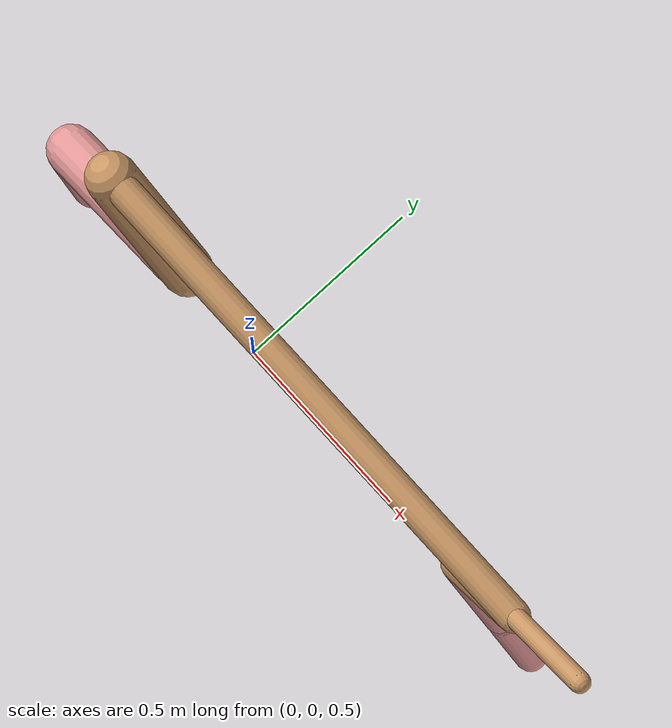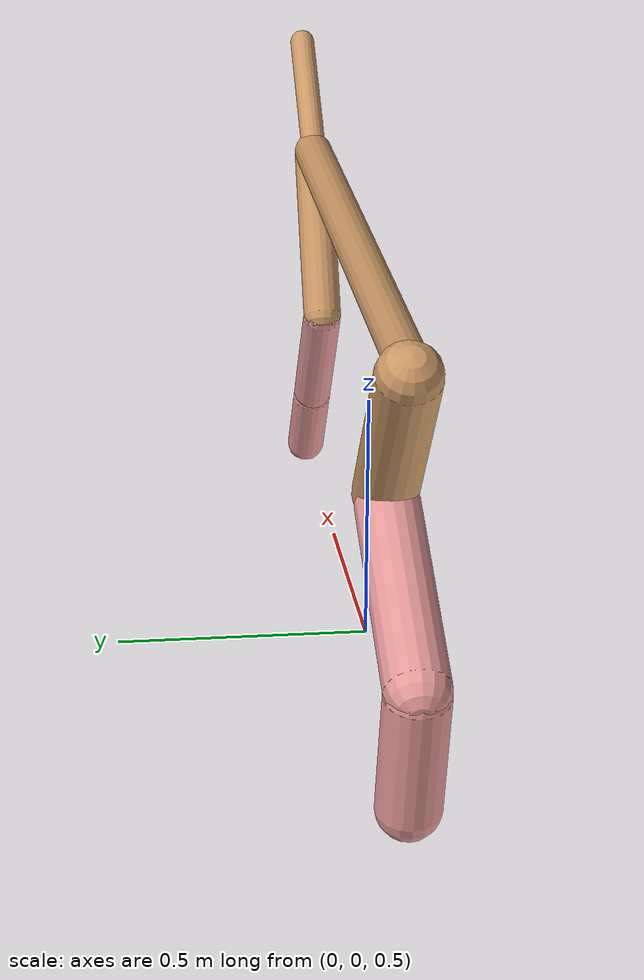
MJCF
<mujoco model="cheetah">
  <compiler angle="radian" coordinate="local" inertiafromgeom="true" settotalmass="14" />
  <default>
    <joint armature=".1" damping=".01" limited="true" solimplimit="0 .8 .03" solreflimit=".02 1" stiffness="8" />
    <geom conaffinity="0" condim="3" contype="1" friction="0.8 .1 .1" rgba="0.8 0.6 .4 1" solimp="0.0 0.8 0.01" solref="0.02 1" />
    <motor ctrllimited="true" ctrlrange="-1 1" />
  </default>
  <size nstack="300000" nuser_geom="1" />
  <option gravity="0 0 -9.81" timestep="0.01" />
  <worldbody>
    <body name="torso" pos="0.0 0.0 1.2472904042893758">
      <joint armature="0" axis="1 0 0" damping="0" limited="false" name="ignorex" pos="0 0 0" stiffness="0" type="slide" />
      <joint armature="0" axis="0 0 1" damping="0" limited="false" name="ignorez" pos="0 0 0" stiffness="0" type="slide" />
      <joint armature="0" axis="0 1 0" damping="0" limited="false" name="ignorey" pos="0 0 0" stiffness="0" type="hinge" />
      <geom fromto="-0.5 0.0 0.0 0.915070267305872 0.0 0.0" name="torso" size="0.040938061675284645" type="capsule" />
      <geom axisangle="0 1 0 .87" name="head" pos="1.0150702673058722 0.0 0.1" size="0.026802995905772772 0.15" type="capsule" />

      <body name="bthigh" pos="-.5 0 0">
        <joint axis="0 1 0" damping="6" name="bthigh" pos="0 0 0" range="-.52 1.05" stiffness="240" type="hinge" />
        <geom axisangle="0 1 0 -3.8" name="bthigh" pos="0.14100413820061578 0.0 -0.1833053796608005" size="0.06424102520444148 0.21225178696776228" type="capsule" />
        <body name="bshin" pos="0.24200827640123151 0.0 -0.35661075932160097">
          <joint axis="0 1 0" damping="4.5" name="bshin" pos="0 0 0" range="-.785 .785" stiffness="180" type="hinge" />
          <geom axisangle="0 1 0 -2.03" name="bshin" pos="-0.20222602783513832 0.0 -0.10111301391756916" rgba="0.9 0.6 0.6 1" size="0.06424102520444148 0.21957081410458168" type="capsule" />
          <body name="bfoot" pos="-0.40445205567027664 0.0 -0.20222602783513832">
            <joint axis="0 1 0" damping="3" name="bfoot" pos="0 0 0" range="-.4 .785" stiffness="120" type="hinge" />
            <geom axisangle="0 1 0 -.27" name="bfoot" pos="0.04288180334461787 0.0 -0.13865116414759782" rgba="0.9 0.6 0.6 1" size="0.06424102520444148 0.1375977101722045" type="capsule" />
            <inertial mass="10" />
          </body>
        </body>
      </body>
      <body name="fthigh" pos="0.9150702673058722 0.0 0.0">
        <joint axis="0 1 0" damping="4.5" name="fthigh" pos="0 0 0" range="-1.5 0.8" stiffness="180" type="hinge" />
        <geom axisangle="0 1 0 .52" name="fthigh" pos="-0.09421568259597914 0.0 -0.1615125987359642" size="0.041205189529040655 0.18105928773299065" type="capsule" />
        <body name="fshin" pos="-0.18843136519195827 0.0 -0.3230251974719284">
          <joint axis="0 1 0" damping="3" name="fshin" pos="0 0 0" range="-1.2 1.1" stiffness="120" type="hinge" />
          <geom axisangle="0 1 0 -.6" name="fshin" pos="0.08742598085088972 0.0 -0.12105135810123191" rgba="0.9 0.6 0.6 1" size="0.041205189529040655 0.1443028909751655" type="capsule" />
          <body name="ffoot" pos="0.17485196170177944 0.0 -0.24210271620246382">
            <joint axis="0 1 0" damping="1.5" name="ffoot" pos="0 0 0" range="-3.1 -0.3" stiffness="60" type="hinge" />
            <geom axisangle="0 1 0 -.6" name="ffoot" pos="0.0586781182498602 0.0 -0.09127707283311588" rgba="0.9 0.6 0.6 1" size="0.041205189529040655 0.09529436196473193" type="capsule" />
            <inertial mass="10" />
          </body>
        </body>
      </body>
    </body>
  </worldbody>
  <actuator>
    <motor gear="120" joint="bthigh" name="bthigh" />
    <motor gear="90" joint="bshin" name="bshin" />
    <motor gear="60" joint="bfoot" name="bfoot" />
    <motor gear="120" joint="fthigh" name="fthigh" />
    <motor gear="60" joint="fshin" name="fshin" />
    <motor gear="30" joint="ffoot" name="ffoot" />
  </actuator>
</mujoco>
